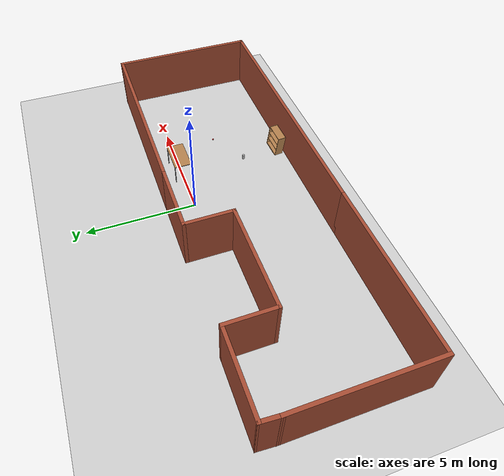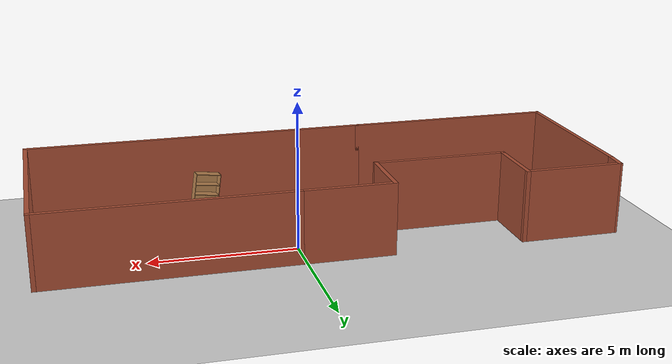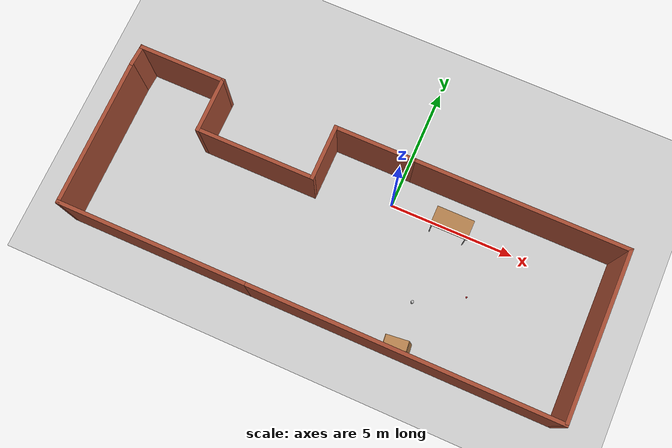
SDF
<sdf version="1.7">
 <world name="default">
  <light name="sun" type="directional">
   <pose>0 0 10 0 -0 0</pose>
   <diffuse>0.8 0.8 0.8 1</diffuse>
   <specular>0.2 0.2 0.2 1</specular>
   <attenuation>
    <range>1000</range>
    <constant>0.9</constant>
    <linear>0.01</linear>
    <quadratic>0.001</quadratic>
   </attenuation>
   <direction>-0.5 0.1 -0.9</direction>
   <spot><inner_angle>0</inner_angle><outer_angle>0</outer_angle><falloff>0</falloff></spot>
  </light>
  <model name="ground_plane">
   <static>1</static>
   <link name="link">
    <collision name="collision">
     <geometry><plane><normal>0 0 1</normal><size>100 100</size></plane></geometry>
     <surface>
      <contact><collide_bitmask>65535</collide_bitmask></contact>
      <friction><ode><mu>100</mu><mu2>50</mu2></ode></friction>
     </surface>
    </collision>
    <visual name="visual">
     <cast_shadows>0</cast_shadows>
     <geometry><plane><normal>0 0 1</normal><size>100 100</size></plane></geometry>
     <material>
      <script><uri>file://media/materials/scripts/gazebo.material</uri><name>Gazebo/Grey</name></script>
     </material>
    </visual>
   </link>
  </model>
  <gravity>0 0 -9.8</gravity>
  <magnetic_field>6e-06 2.3e-05 -4.2e-05</magnetic_field>
  <atmosphere type="adiabatic"/>
  <physics type="ode">
   <max_step_size>0.001</max_step_size>
   <real_time_factor>1</real_time_factor>
   <real_time_update_rate>1000</real_time_update_rate>
  </physics>
  <scene><ambient>0.4 0.4 0.4 1</ambient><background>0.7 0.7 0.7 1</background><shadows>1</shadows></scene>
  <spherical_coordinates>
   <surface_model>EARTH_WGS84</surface_model>
   <latitude_deg>0</latitude_deg>
   <longitude_deg>0</longitude_deg>
   <elevation>0</elevation>
   <heading_deg>0</heading_deg>
  </spherical_coordinates>
  <model name="Room">
   <pose>-1.18281 -2.04941 0 0 -0 0</pose>
   <link name="Wall_0">
    <collision name="Wall_0_Collision">
     <geometry><box><size>6 0.15 2.5</size></box></geometry>
     <pose>0 0 1.25 0 -0 0</pose>
    </collision>
    <visual name="Wall_0_Visual">
     <pose>0 0 1.25 0 -0 0</pose>
     <geometry><box><size>6 0.15 2.5</size></box></geometry>
     <material>
      <script><uri>file://media/materials/scripts/gazebo.material</uri><name>Gazebo/Bricks</name></script>
      <ambient>1 1 1 1</ambient>
     </material>
     <meta><layer>0</layer></meta>
    </visual>
    <pose>-9.72259 -0.377411 0 0 -0 -1.5708</pose>
   </link>
   <link name="Wall_1">
    <collision name="Wall_1_Collision">
     <geometry><box><size>7.5 0.15 2.5</size></box></geometry>
     <pose>0 0 1.25 0 -0 0</pose>
    </collision>
    <visual name="Wall_1_Visual">
     <pose>0 0 1.25 0 -0 0</pose>
     <geometry><box><size>7.5 0.15 2.5</size></box></geometry>
     <material>
      <script><uri>file://media/materials/scripts/gazebo.material</uri><name>Gazebo/Bricks</name></script>
      <ambient>1 1 1 1</ambient>
     </material>
     <meta><layer>0</layer></meta>
    </visual>
    <pose>-6.04759 -3.30241 0 0 -0 0</pose>
   </link>
   <link name="Wall_10">
    <collision name="Wall_10_Collision">
     <geometry><box><size>0.901665 0.15 2.5</size></box></geometry>
     <pose>0 0 1.25 0 -0 0</pose>
    </collision>
    <visual name="Wall_10_Visual">
     <pose>0 0 1.25 0 -0 0</pose>
     <geometry><box><size>0.901665 0.15 2.5</size></box></geometry>
     <material>
      <script><uri>file://media/materials/scripts/gazebo.material</uri><name>Gazebo/Bricks</name></script>
      <ambient>1 1 1 1</ambient>
     </material>
     <meta><layer>0</layer></meta>
    </visual>
    <pose>-9.69759 2.92259 0 0 -0 -1.63736</pose>
   </link>
   <link name="Wall_2">
    <collision name="Wall_2_Collision">
     <geometry><box><size>12.25 0.15 2.5</size></box></geometry>
     <pose>0 0 1.25 0 -0 0</pose>
    </collision>
    <visual name="Wall_2_Visual">
     <pose>0 0 1.25 0 -0 0</pose>
     <geometry><box><size>12.25 0.15 2.5</size></box></geometry>
     <material>
      <script><uri>file://media/materials/scripts/gazebo.material</uri><name>Gazebo/Bricks</name></script>
      <ambient>1 1 1 1</ambient>
     </material>
     <meta><layer>0</layer></meta>
    </visual>
    <pose>3.67741 -3.30241 0 0 -0 0</pose>
   </link>
   <link name="Wall_3">
    <collision name="Wall_3_Collision">
     <geometry><box><size>6.75 0.15 2.5</size></box></geometry>
     <pose>0 0 1.25 0 -0 0</pose>
    </collision>
    <visual name="Wall_3_Visual">
     <pose>0 0 1.25 0 -0 0</pose>
     <geometry><box><size>6.75 0.15 2.5</size></box></geometry>
     <material>
      <script><uri>file://media/materials/scripts/gazebo.material</uri><name>Gazebo/Bricks</name></script>
      <ambient>1 1 1 1</ambient>
     </material>
     <meta><layer>0</layer></meta>
    </visual>
    <pose>9.72741 -0.002411 0 0 -0 1.5708</pose>
   </link>
   <link name="Wall_4">
    <collision name="Wall_4_Collision">
     <geometry><box><size>8.5 0.15 2.5</size></box></geometry>
     <pose>0 0 1.25 0 -0 0</pose>
    </collision>
    <visual name="Wall_4_Visual">
     <pose>0 0 1.25 0 -0 0</pose>
     <geometry><box><size>8.5 0.15 2.5</size></box></geometry>
     <material>
      <script><uri>file://media/materials/scripts/gazebo.material</uri><name>Gazebo/Bricks</name></script>
      <ambient>1 1 1 1</ambient>
     </material>
     <meta><layer>0</layer></meta>
    </visual>
    <pose>5.55241 3.29759 0 0 -0 3.14159</pose>
   </link>
   <link name="Wall_5">
    <collision name="Wall_5_Collision">
     <geometry><box><size>3.25 0.15 2.5</size></box></geometry>
     <pose>0 0 1.25 0 -0 0</pose>
    </collision>
    <visual name="Wall_5_Visual">
     <pose>0 0 1.25 0 -0 0</pose>
     <geometry><box><size>3.25 0.15 2.5</size></box></geometry>
     <material>
      <script><uri>file://media/materials/scripts/gazebo.material</uri><name>Gazebo/Bricks</name></script>
      <ambient>1 1 1 1</ambient>
     </material>
     <meta><layer>0</layer></meta>
    </visual>
    <pose>-0.172588 3.29759 0 0 -0 3.14159</pose>
   </link>
   <link name="Wall_6">
    <collision name="Wall_6_Collision">
     <geometry><box><size>2.25 0.15 2.5</size></box></geometry>
     <pose>0 0 1.25 0 -0 0</pose>
    </collision>
    <visual name="Wall_6_Visual">
     <pose>0 0 1.25 0 -0 0</pose>
     <geometry><box><size>2.25 0.15 2.5</size></box></geometry>
     <material>
      <script><uri>file://media/materials/scripts/gazebo.material</uri><name>Gazebo/Bricks</name></script>
      <ambient>1 1 1 1</ambient>
     </material>
     <meta><layer>0</layer></meta>
    </visual>
    <pose>-1.72259 2.24759 0 0 -0 -1.5708</pose>
   </link>
   <link name="Wall_7">
    <collision name="Wall_7_Collision">
     <geometry><box><size>4.75 0.15 2.5</size></box></geometry>
     <pose>0 0 1.25 0 -0 0</pose>
    </collision>
    <visual name="Wall_7_Visual">
     <pose>0 0 1.25 0 -0 0</pose>
     <geometry><box><size>4.75 0.15 2.5</size></box></geometry>
     <material>
      <script><uri>file://media/materials/scripts/gazebo.material</uri><name>Gazebo/Bricks</name></script>
      <ambient>1 1 1 1</ambient>
     </material>
     <meta><layer>0</layer></meta>
    </visual>
    <pose>-4.02259 1.19759 0 0 -0 3.14159</pose>
   </link>
   <link name="Wall_8">
    <collision name="Wall_8_Collision">
     <geometry><box><size>2.25 0.15 2.5</size></box></geometry>
     <pose>0 0 1.25 0 -0 0</pose>
    </collision>
    <visual name="Wall_8_Visual">
     <pose>0 0 1.25 0 -0 0</pose>
     <geometry><box><size>2.25 0.15 2.5</size></box></geometry>
     <material>
      <script><uri>file://media/materials/scripts/gazebo.material</uri><name>Gazebo/Bricks</name></script>
      <ambient>1 1 1 1</ambient>
     </material>
     <meta><layer>0</layer></meta>
    </visual>
    <pose>-6.32259 2.24759 0 0 -0 1.5708</pose>
   </link>
   <link name="Wall_9">
    <collision name="Wall_9_Collision">
     <geometry><box><size>3.5 0.15 2.5</size></box></geometry>
     <pose>0 0 1.25 0 -0 0</pose>
    </collision>
    <visual name="Wall_9_Visual">
     <pose>0 0 1.25 0 -0 0</pose>
     <geometry><box><size>3.5 0.15 2.5</size></box></geometry>
     <material>
      <script><uri>file://media/materials/scripts/gazebo.material</uri><name>Gazebo/Bricks</name></script>
      <ambient>1 1 1 1</ambient>
     </material>
     <meta><layer>0</layer></meta>
    </visual>
    <pose>-7.99759 3.29759 0 0 -0 3.14159</pose>
   </link>
   <static>1</static>
  </model>
  <model name="beer">
   <link name="link">
    <pose>0 0 0.115 0 -0 0</pose>
    <inertial>
     <mass>0.39</mass>
     <inertia><ixx>0.00058</ixx><ixy>0</ixy><ixz>0</ixz><iyy>0.00058</iyy><iyz>0</iyz><izz>0.00019</izz></inertia>
    </inertial>
    <collision name="collision">
     <geometry><cylinder><radius>0.055</radius><length>0.23</length></cylinder></geometry>
    </collision>
    <visual name="visual">
     <geometry><cylinder><radius>0.055</radius><length>0.23</length></cylinder></geometry>
     <material>
      <script>
       <uri>model://beer/materials/scripts</uri>
       <uri>model://beer/materials/textures</uri>
       <name>Beer/Diffuse</name>
      </script>
     </material>
    </visual>
   </link>
   <pose>2.18754 -3.18181 0 0 -0 0</pose>
  </model>
  <model name="bookshelf">
   <static>1</static>
   <link name="link">
    <inertial><mass>1</mass></inertial>
    <collision name="back">
     <pose>0 0.005 0.6 0 -0 0</pose>
     <geometry><box><size>0.9 0.01 1.2</size></box></geometry>
    </collision>
    <visual name="visual1">
     <pose>0 0.005 0.6 0 -0 0</pose>
     <geometry><box><size>0.9 0.01 1.2</size></box></geometry>
     <material>
      <script><uri>file://media/materials/scripts/gazebo.material</uri><name>Gazebo/Wood</name></script>
     </material>
    </visual>
    <collision name="left_side">
     <pose>0.45 -0.195 0.6 0 -0 0</pose>
     <geometry><box><size>0.02 0.4 1.2</size></box></geometry>
    </collision>
    <visual name="visual2">
     <pose>0.45 -0.195 0.6 0 -0 0</pose>
     <geometry><box><size>0.02 0.4 1.2</size></box></geometry>
     <material>
      <script><uri>file://media/materials/scripts/gazebo.material</uri><name>Gazebo/Wood</name></script>
     </material>
    </visual>
    <collision name="right_side">
     <pose>-0.45 -0.195 0.6 0 -0 0</pose>
     <geometry><box><size>0.02 0.4 1.2</size></box></geometry>
    </collision>
    <visual name="visual3">
     <pose>-0.45 -0.195 0.6 0 -0 0</pose>
     <geometry><box><size>0.02 0.4 1.2</size></box></geometry>
     <material>
      <script><uri>file://media/materials/scripts/gazebo.material</uri><name>Gazebo/Wood</name></script>
     </material>
    </visual>
    <collision name="bottom">
     <pose>0 -0.195 0.03 0 -0 0</pose>
     <geometry><box><size>0.88 0.4 0.06</size></box></geometry>
    </collision>
    <visual name="visual4">
     <pose>0 -0.195 0.03 0 -0 0</pose>
     <geometry><box><size>0.88 0.4 0.06</size></box></geometry>
     <material>
      <script><uri>file://media/materials/scripts/gazebo.material</uri><name>Gazebo/Wood</name></script>
     </material>
    </visual>
    <collision name="top">
     <pose>0 -0.195 1.19 0 -0 0</pose>
     <geometry><box><size>0.88 0.4 0.02</size></box></geometry>
    </collision>
    <visual name="visual5">
     <pose>0 -0.195 1.19 0 -0 0</pose>
     <geometry><box><size>0.88 0.4 0.02</size></box></geometry>
     <material>
      <script><uri>file://media/materials/scripts/gazebo.material</uri><name>Gazebo/Wood</name></script>
     </material>
    </visual>
    <collision name="low_shelf">
     <pose>0 -0.195 0.43 0 -0 0</pose>
     <geometry><box><size>0.88 0.4 0.02</size></box></geometry>
    </collision>
    <visual name="visual6">
     <pose>0 -0.195 0.43 0 -0 0</pose>
     <geometry><box><size>0.88 0.4 0.02</size></box></geometry>
     <material>
      <script><uri>file://media/materials/scripts/gazebo.material</uri><name>Gazebo/Wood</name></script>
     </material>
    </visual>
    <collision name="high_shelf">
     <pose>0 -0.195 0.8 0 -0 0</pose>
     <geometry><box><size>0.88 0.4 0.02</size></box></geometry>
    </collision>
    <visual name="visual7">
     <pose>0 -0.195 0.8 0 -0 0</pose>
     <geometry><box><size>0.88 0.4 0.02</size></box></geometry>
     <material>
      <script><uri>file://media/materials/scripts/gazebo.material</uri><name>Gazebo/Wood</name></script>
     </material>
    </visual>
   </link>
   <pose>2.38587 -5.1148 0 -0.027449 0.140775 -3.05113</pose>
  </model>
  <model name="cricket_ball">
   <link name="link">
    <pose>0 0 0.0375 0 -0 0</pose>
    <inertial>
     <mass>0.1467</mass>
     <inertia>
      <ixx>8.25187e-05</ixx>
      <ixy>0</ixy>
      <ixz>0</ixz>
      <iyy>8.25187e-05</iyy>
      <iyz>0</iyz>
      <izz>8.25187e-05</izz>
     </inertia>
    </inertial>
    <collision name="collision">
     <geometry><sphere><radius>0.0375</radius></sphere></geometry>
     <surface>
      <contact>
       <poissons_ratio>0.347</poissons_ratio>
       <elastic_modulus>8.8e+09</elastic_modulus>
       <ode><kp>100000</kp><kd>100</kd><max_vel>100</max_vel><min_depth>0.001</min_depth></ode>
      </contact>
      <friction>
       <torsional>
        <coefficient>1</coefficient>
        <use_patch_radius>0</use_patch_radius>
        <surface_radius>0.01</surface_radius>
       </torsional>
      </friction>
     </surface>
    </collision>
    <visual name="visual">
     <geometry><sphere><radius>0.0375</radius></sphere></geometry>
     <material>
      <script><uri>file://media/materials/scripts/gazebo.material</uri><name>Gazebo/Red</name></script>
     </material>
    </visual>
    <velocity_decay><linear>0</linear><angular>0.005</angular></velocity_decay>
   </link>
   <pose>4.00445 -2.17929 0 0 -0 0</pose>
  </model>
  <model name="table">
   <static>1</static>
   <link name="link">
    <collision name="surface">
     <pose>0 0 1 0 -0 0</pose>
     <geometry><box><size>1.5 0.8 0.03</size></box></geometry>
     <surface><friction><ode><mu>0.6</mu><mu2>0.6</mu2></ode></friction></surface>
    </collision>
    <visual name="visual1">
     <pose>0 0 1 0 -0 0</pose>
     <geometry><box><size>1.5 0.8 0.03</size></box></geometry>
     <material>
      <script><uri>file://media/materials/scripts/gazebo.material</uri><name>Gazebo/Wood</name></script>
     </material>
    </visual>
    <collision name="front_left_leg">
     <pose>0.68 0.38 0.5 0 -0 0</pose>
     <geometry><cylinder><radius>0.02</radius><length>1</length></cylinder></geometry>
    </collision>
    <visual name="front_left_leg">
     <pose>0.68 0.38 0.5 0 -0 0</pose>
     <geometry><cylinder><radius>0.02</radius><length>1</length></cylinder></geometry>
     <material>
      <script><uri>file://media/materials/scripts/gazebo.material</uri><name>Gazebo/Grey</name></script>
     </material>
    </visual>
    <collision name="front_right_leg">
     <pose>0.68 -0.38 0.5 0 -0 0</pose>
     <geometry><cylinder><radius>0.02</radius><length>1</length></cylinder></geometry>
    </collision>
    <visual name="front_right_leg">
     <pose>0.68 -0.38 0.5 0 -0 0</pose>
     <geometry><cylinder><radius>0.02</radius><length>1</length></cylinder></geometry>
     <material>
      <script><uri>file://media/materials/scripts/gazebo.material</uri><name>Gazebo/Grey</name></script>
     </material>
    </visual>
    <collision name="back_right_leg">
     <pose>-0.68 -0.38 0.5 0 -0 0</pose>
     <geometry><cylinder><radius>0.02</radius><length>1</length></cylinder></geometry>
    </collision>
    <visual name="back_right_leg">
     <pose>-0.68 -0.38 0.5 0 -0 0</pose>
     <geometry><cylinder><radius>0.02</radius><length>1</length></cylinder></geometry>
     <material>
      <script><uri>file://media/materials/scripts/gazebo.material</uri><name>Gazebo/Grey</name></script>
     </material>
    </visual>
    <collision name="back_left_leg">
     <pose>-0.68 0.38 0.5 0 -0 0</pose>
     <geometry><cylinder><radius>0.02</radius><length>1</length></cylinder></geometry>
    </collision>
    <visual name="back_left_leg">
     <pose>-0.68 0.38 0.5 0 -0 0</pose>
     <geometry><cylinder><radius>0.02</radius><length>1</length></cylinder></geometry>
     <material>
      <script><uri>file://media/materials/scripts/gazebo.material</uri><name>Gazebo/Grey</name></script>
     </material>
    </visual>
   </link>
   <pose>2.40182 0.032443 0 0 -0 0</pose>
  </model>
  <light name="user_spot_light_0" type="spot">
   <pose>1.0992 -2.29257 1 0 -0 0</pose>
   <diffuse>0.5 0.5 0.5 1</diffuse>
   <specular>0.1 0.1 0.1 1</specular>
   <direction>0 0 -1</direction>
   <attenuation>
    <range>20</range>
    <constant>0.5</constant>
    <linear>0.01</linear>
    <quadratic>0.001</quadratic>
   </attenuation>
   <cast_shadows>0</cast_shadows>
   <spot><inner_angle>0.6</inner_angle><outer_angle>1</outer_angle><falloff>1</falloff></spot>
  </light>
  <light name="user_point_light_0" type="point">
   <pose>0.997854 -3.58417 1 0 -0 0</pose>
   <diffuse>0.5 0.5 0.5 1</diffuse>
   <specular>0.1 0.1 0.1 1</specular>
   <attenuation>
    <range>20</range>
    <constant>0.5</constant>
    <linear>0.01</linear>
    <quadratic>0.001</quadratic>
   </attenuation>
   <cast_shadows>0</cast_shadows>
   <direction>0 0 -1</direction>
  </light>
  <light name="user_point_light_1" type="point">
   <pose>-5.96 -4.15373 1 0 -0 0</pose>
   <diffuse>0.5 0.5 0.5 1</diffuse>
   <specular>0.1 0.1 0.1 1</specular>
   <attenuation>
    <range>20</range>
    <constant>0.5</constant>
    <linear>0.01</linear>
    <quadratic>0.001</quadratic>
   </attenuation>
   <cast_shadows>0</cast_shadows>
   <direction>0 0 -1</direction>
  </light>
  <light name="user_directional_light_0" type="directional">
   <pose>-2.60198 -2.20292 1 0 -0 0</pose>
   <diffuse>0.5 0.5 0.5 1</diffuse>
   <specular>0.1 0.1 0.1 1</specular>
   <direction>0.1 0.1 -0.9</direction>
   <attenuation>
    <range>20</range>
    <constant>0.5</constant>
    <linear>0.01</linear>
    <quadratic>0.001</quadratic>
   </attenuation>
  </light>
 </world>
</sdf>
